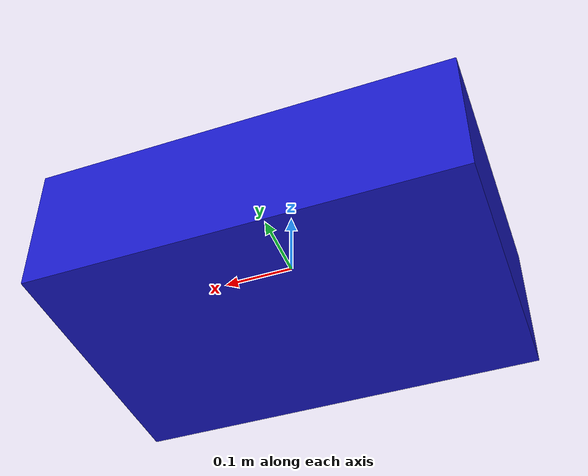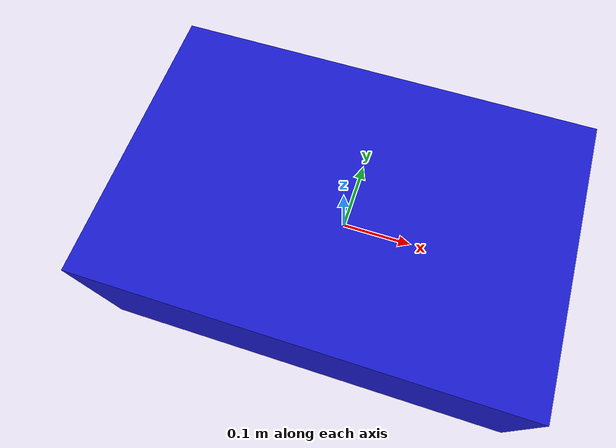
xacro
<?xml version="1.0"?>
<robot name="rover" xmlns:xacro="http://www.ros.org/wiki/xacro">

  <!-- Main body -->
  <link name="hull_link">
    <visual>
      <geometry>
        <box size="0.6 0.4 0.2"/>
      </geometry>
      <material name="blue">
        <color rgba="0.1 0.1 0.8 1"/>
      </material>
    </visual>
    <collision>
      <geometry>
        <box size="0.6 0.4 0.2"/>
      </geometry>
    </collision>
    <inertial>
      <mass value="10"/>
      <origin xyz="0 0 0"/>
      <inertia ixx="1" ixy="0" ixz="0" iyy="1" iyz="0" izz="1"/>
    </inertial>
  </link>

  <!-- Six thruster joints (effort controlled) -->
  <!-- X, Y, Z, Roll, Pitch, Yaw -->
  <joint name="thruster_joint_1" type="continuous">
    <parent link="hull_link"/>
    <child link="thruster_link_1"/>
    <origin xyz="0.3 0 0" rpy="0 0 0"/>
    <axis xyz="1 0 0"/>
  </joint>
  <link name="thruster_link_1"/>

  <joint name="thruster_joint_2" type="continuous">
    <parent link="hull_link"/>
    <child link="thruster_link_2"/>
    <origin xyz="-0.3 0 0" rpy="0 0 0"/>
    <axis xyz="0 1 0"/>
  </joint>
  <link name="thruster_link_2"/>

  <joint name="thruster_joint_3" type="continuous">
    <parent link="hull_link"/>
    <child link="thruster_link_3"/>
    <origin xyz="0 0 0.1" rpy="0 0 0"/>
    <axis xyz="0 0 1"/>
  </joint>
  <link name="thruster_link_3"/>

  <joint name="thruster_joint_4" type="continuous">
    <parent link="hull_link"/>
    <child link="thruster_link_4"/>
    <origin xyz="0 0.2 0" rpy="0 0 0"/>
    <axis xyz="1 0 0"/>
  </joint>
  <link name="thruster_link_4"/>

  <joint name="thruster_joint_5" type="continuous">
    <parent link="hull_link"/>
    <child link="thruster_link_5"/>
    <origin xyz="0 -0.2 0" rpy="0 0 0"/>
    <axis xyz="0 1 0"/>
  </joint>
  <link name="thruster_link_5"/>

  <joint name="thruster_joint_6" type="continuous">
    <parent link="hull_link"/>
    <child link="thruster_link_6"/>
    <origin xyz="0 0 0.2" rpy="0 0 0"/>
    <axis xyz="0 0 1"/>
  </joint>
  <link name="thruster_link_6"/>

  <!-- ros2_control tag for hardware interface -->
  <ros2_control name="abb_control" type="system">
    <hardware>
      <plugin>abb_simulator_layer/AbbSimulatorInterface</plugin>
    </hardware>
    <joint name="position_joint_0">
      <command_interface name="position"/>
      <state_interface name="position"/>
    </joint>
    <joint name="position_joint_1">
      <command_interface name="position"/>
      <state_interface name="position"/>
    </joint>
    <joint name="position_joint_2">
      <command_interface name="position"/>
      <state_interface name="position"/>
    </joint>
    <joint name="position_joint_3">
      <command_interface name="position"/>
      <state_interface name="position"/>
    </joint>
    <joint name="position_joint_4">
      <command_interface name="position"/>
      <state_interface name="position"/>
    </joint>
    <joint name="position_joint_5">
      <command_interface name="position"/>
      <state_interface name="position"/>
    </joint>
  </ros2_control>

</robot>
